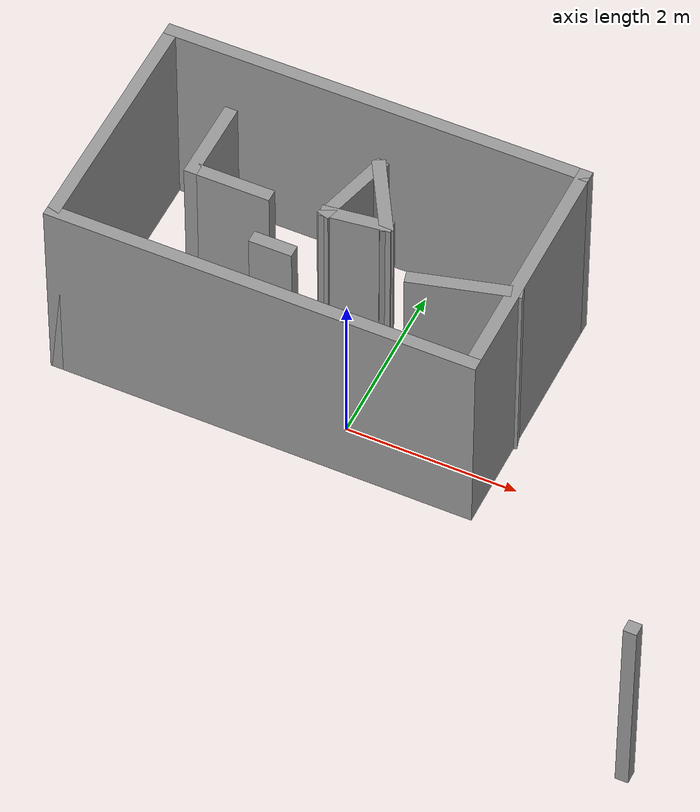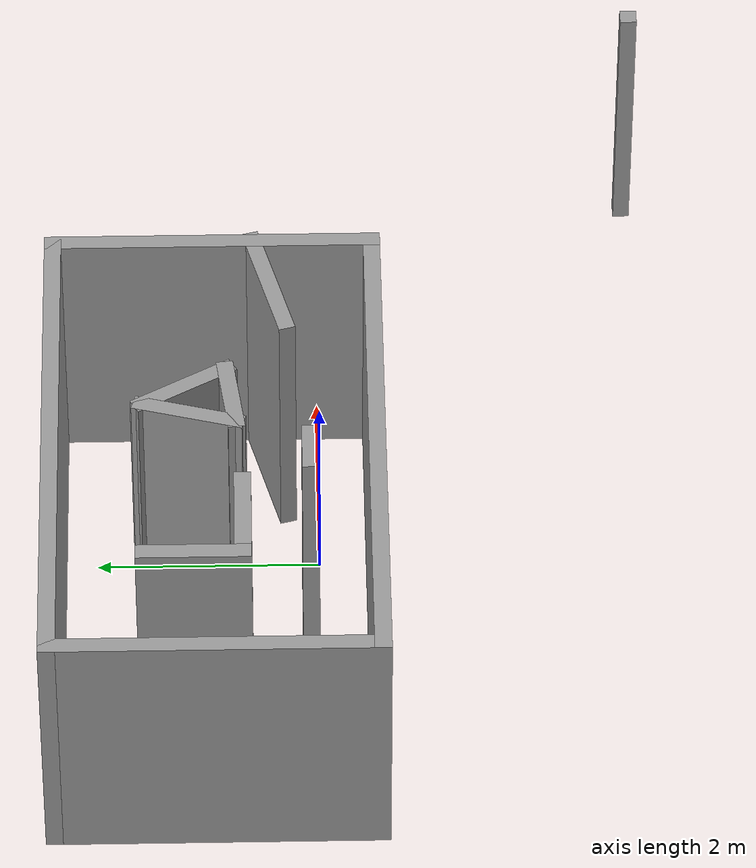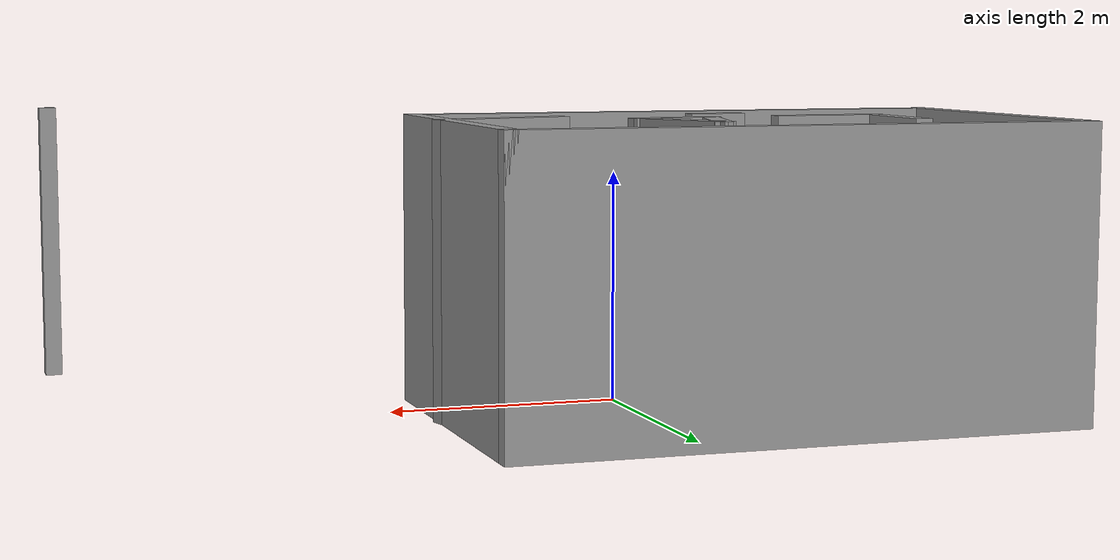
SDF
<?xml version='1.0'?>
<sdf version='1.7'>
  <model name='world_t1'>
    <pose>0.67417 -0.284956 0 0 -0 0</pose>
    <link name='Wall_38'>
      <collision name='Wall_38_Collision'>
        <geometry>
          <box>
            <size>0.15 0.15 2.5</size>
          </box>
        </geometry>
        <pose>0 0 1.25 0 -0 0</pose>
      </collision>
      <visual name='Wall_38_Visual'>
        <pose>0 0 1.25 0 -0 0</pose>
        <geometry>
          <box>
            <size>0.15 0.15 2.5</size>
          </box>
        </geometry>
        <material>
          <script>
            <uri>file://media/materials/scripts/gazebo.material</uri>
            <name>Gazebo/Grey</name>
          </script>
          <ambient>1 1 1 1</ambient>
        </material>
        <meta>
          <layer>0</layer>
        </meta>
      </visual>
      <pose>3.86894 -2.64385 0 0 -0 0</pose>
    </link>
    <link name='Wall_53'>
      <collision name='Wall_53_Collision'>
        <geometry>
          <box>
            <size>5 0.15 2.5</size>
          </box>
        </geometry>
        <pose>0 0 1.25 0 -0 0</pose>
      </collision>
      <visual name='Wall_53_Visual'>
        <pose>0 0 1.25 0 -0 0</pose>
        <geometry>
          <box>
            <size>5 0.15 2.5</size>
          </box>
        </geometry>
        <material>
          <script>
            <uri>file://media/materials/scripts/gazebo.material</uri>
            <name>Gazebo/Grey</name>
          </script>
          <ambient>1 1 1 1</ambient>
        </material>
        <meta>
          <layer>0</layer>
        </meta>
      </visual>
      <pose>-1.44394 2.64385 0 0 -0 0</pose>
    </link>
    <link name='Wall_55'>
      <collision name='Wall_55_Collision'>
        <geometry>
          <box>
            <size>3 0.15 2.5</size>
          </box>
        </geometry>
        <pose>0 0 1.25 0 -0 0</pose>
      </collision>
      <visual name='Wall_55_Visual'>
        <pose>0 0 1.25 0 -0 0</pose>
        <geometry>
          <box>
            <size>3 0.15 2.5</size>
          </box>
        </geometry>
        <material>
          <script>
            <uri>file://media/materials/scripts/gazebo.material</uri>
            <name>Gazebo/Grey</name>
          </script>
          <ambient>1 1 1 1</ambient>
        </material>
        <meta>
          <layer>0</layer>
        </meta>
      </visual>
      <pose>-3.86894 1.21885 0 0 -0 -1.5708</pose>
    </link>
    <link name='Wall_56'>
      <collision name='Wall_56_Collision'>
        <geometry>
          <box>
            <size>5 0.15 2.5</size>
          </box>
        </geometry>
        <pose>0 0 1.25 0 -0 0</pose>
      </collision>
      <visual name='Wall_56_Visual'>
        <pose>0 0 1.25 0 -0 0</pose>
        <geometry>
          <box>
            <size>5 0.15 2.5</size>
          </box>
        </geometry>
        <material>
          <script>
            <uri>file://media/materials/scripts/gazebo.material</uri>
            <name>Gazebo/Grey</name>
          </script>
          <ambient>1 1 1 1</ambient>
        </material>
        <meta>
          <layer>0</layer>
        </meta>
      </visual>
      <pose>-1.44394 -0.206152 0 0 -0 0</pose>
    </link>
    <link name='Wall_57'>
      <collision name='Wall_57_Collision'>
        <geometry>
          <box>
            <size>3 0.15 2.5</size>
          </box>
        </geometry>
        <pose>0 0 1.25 0 -0 0</pose>
      </collision>
      <visual name='Wall_57_Visual'>
        <pose>0 0 1.25 0 -0 0</pose>
        <geometry>
          <box>
            <size>3 0.15 2.5</size>
          </box>
        </geometry>
        <material>
          <script>
            <uri>file://media/materials/scripts/gazebo.material</uri>
            <name>Gazebo/Grey</name>
          </script>
          <ambient>1 1 1 1</ambient>
        </material>
        <meta>
          <layer>0</layer>
        </meta>
      </visual>
      <pose>0.981059 1.21885 0 0 -0 1.5708</pose>
    </link>
    <link name='Wall_59'>
      <collision name='Wall_59_Collision'>
        <geometry>
          <box>
            <size>1 0.15 2.5</size>
          </box>
        </geometry>
        <pose>0 0 1.25 0 -0 0</pose>
      </collision>
      <visual name='Wall_59_Visual'>
        <pose>0 0 1.25 0 -0 0</pose>
        <geometry>
          <box>
            <size>1 0.15 2.5</size>
          </box>
        </geometry>
        <material>
          <script>
            <uri>file://media/materials/scripts/gazebo.material</uri>
            <name>Gazebo/Grey</name>
          </script>
          <ambient>1 1 1 1</ambient>
        </material>
        <meta>
          <layer>0</layer>
        </meta>
      </visual>
      <pose>-2.7994 1.39584 0 0 -0 -1.5708</pose>
    </link>
    <link name='Wall_60'>
      <collision name='Wall_60_Collision'>
        <geometry>
          <box>
            <size>1 0.15 2.5</size>
          </box>
        </geometry>
        <pose>0 0 1.25 0 -0 0</pose>
      </collision>
      <visual name='Wall_60_Visual'>
        <pose>0 0 1.25 0 -0 0</pose>
        <geometry>
          <box>
            <size>1 0.15 2.5</size>
          </box>
        </geometry>
        <material>
          <script>
            <uri>file://media/materials/scripts/gazebo.material</uri>
            <name>Gazebo/Grey</name>
          </script>
          <ambient>1 1 1 1</ambient>
        </material>
        <meta>
          <layer>0</layer>
        </meta>
      </visual>
      <pose>-2.3744 0.970843 0 0 -0 0</pose>
    </link>
    <link name='Wall_62'>
      <collision name='Wall_62_Collision'>
        <geometry>
          <box>
            <size>1 0.15 2.5</size>
          </box>
        </geometry>
        <pose>0 0 1.25 0 -0 0</pose>
      </collision>
      <visual name='Wall_62_Visual'>
        <pose>0 0 1.25 0 -0 0</pose>
        <geometry>
          <box>
            <size>1 0.15 2.5</size>
          </box>
        </geometry>
        <material>
          <script>
            <uri>file://media/materials/scripts/gazebo.material</uri>
            <name>Gazebo/Grey</name>
          </script>
          <ambient>1 1 1 1</ambient>
        </material>
        <meta>
          <layer>0</layer>
        </meta>
      </visual>
      <pose>-1.14538 1.4341 0 0 -0 -1.8326</pose>
    </link>
    <link name='Wall_64'>
      <collision name='Wall_64_Collision'>
        <geometry>
          <box>
            <size>1 0.15 2.5</size>
          </box>
        </geometry>
        <pose>0 0 1.25 0 -0 0</pose>
      </collision>
      <visual name='Wall_64_Visual'>
        <pose>0 0 1.25 0 -0 0</pose>
        <geometry>
          <box>
            <size>1 0.15 2.5</size>
          </box>
        </geometry>
        <material>
          <script>
            <uri>file://media/materials/scripts/gazebo.material</uri>
            <name>Gazebo/Grey</name>
          </script>
          <ambient>1 1 1 1</ambient>
        </material>
        <meta>
          <layer>0</layer>
        </meta>
      </visual>
      <pose>-0.822884 1.47656 0 0 -0 -1.0472</pose>
    </link>
    <link name='Wall_66'>
      <collision name='Wall_66_Collision'>
        <geometry>
          <box>
            <size>0.800562 0.15 2.5</size>
          </box>
        </geometry>
        <pose>0 0 1.25 0 -0 0</pose>
      </collision>
      <visual name='Wall_66_Visual'>
        <pose>0 0 1.25 0 -0 0</pose>
        <geometry>
          <box>
            <size>0.800562 0.15 2.5</size>
          </box>
        </geometry>
        <material>
          <script>
            <uri>file://media/materials/scripts/gazebo.material</uri>
            <name>Gazebo/Grey</name>
          </script>
          <ambient>1 1 1 1</ambient>
        </material>
        <meta>
          <layer>0</layer>
        </meta>
      </visual>
      <pose>-0.932882 1.06604 0 0 -0 0.1309</pose>
    </link>
    <link name='Wall_69'>
      <collision name='Wall_69_Collision'>
        <geometry>
          <box>
            <size>0.5 0.15 2.5</size>
          </box>
        </geometry>
        <pose>0 0 1.25 0 -0 0</pose>
      </collision>
      <visual name='Wall_69_Visual'>
        <pose>0 0 1.25 0 -0 0</pose>
        <geometry>
          <box>
            <size>0.5 0.15 2.5</size>
          </box>
        </geometry>
        <material>
          <script>
            <uri>file://media/materials/scripts/gazebo.material</uri>
            <name>Gazebo/Grey</name>
          </script>
          <ambient>1 1 1 1</ambient>
        </material>
        <meta>
          <layer>0</layer>
        </meta>
      </visual>
      <pose>-1.5757 0.37574 0 0 -0 0</pose>
    </link>
    <link name='Wall_71'>
      <collision name='Wall_71_Collision'>
        <geometry>
          <box>
            <size>1.25 0.15 2.5</size>
          </box>
        </geometry>
        <pose>0 0 1.25 0 -0 0</pose>
      </collision>
      <visual name='Wall_71_Visual'>
        <pose>0 0 1.25 0 -0 0</pose>
        <geometry>
          <box>
            <size>1.25 0.15 2.5</size>
          </box>
        </geometry>
        <material>
          <script>
            <uri>file://media/materials/scripts/gazebo.material</uri>
            <name>Gazebo/Grey</name>
          </script>
          <ambient>1 1 1 1</ambient>
        </material>
        <meta>
          <layer>0</layer>
        </meta>
      </visual>
      <pose>0.469952 0.722616 0 0 -0 -2.87979</pose>
    </link>
    <static>1</static>
  </model>
</sdf>
